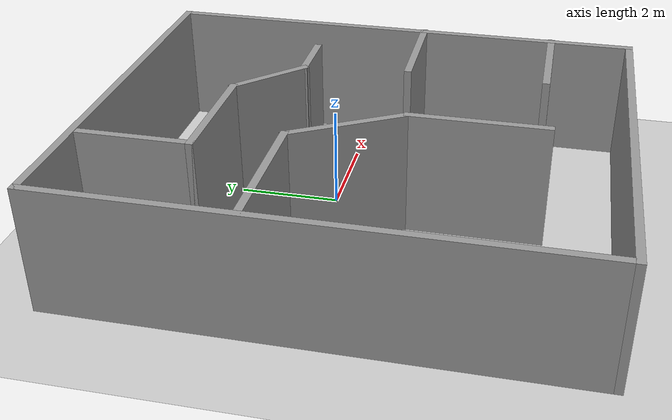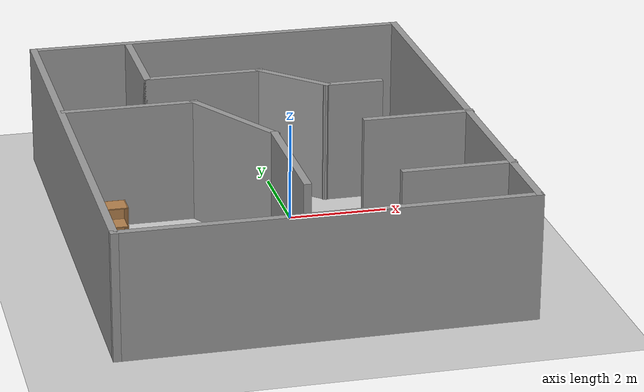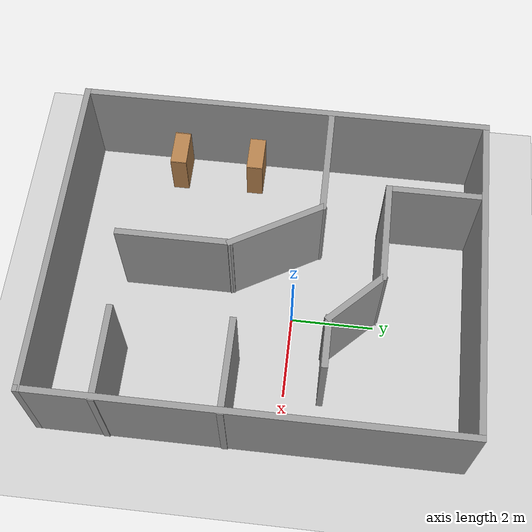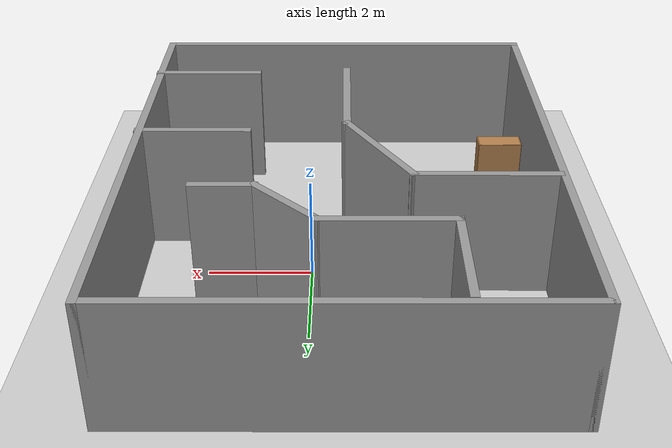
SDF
<sdf version="1.6">
 <world name="default">
  <plugin name="welcom" filename="libwelcome.so"/>
  <light name="sun" type="directional">
   <pose>0 0 10 0 -0 0</pose>
   <diffuse>0.8 0.8 0.8 1</diffuse>
   <specular>0.2 0.2 0.2 1</specular>
   <attenuation>
    <range>1000</range>
    <constant>0.9</constant>
    <linear>0.01</linear>
    <quadratic>0.001</quadratic>
   </attenuation>
   <direction>-0.5 0.1 -0.9</direction>
   <spot><inner_angle>0</inner_angle><outer_angle>0</outer_angle><falloff>0</falloff></spot>
  </light>
  <model name="ground_plane">
   <static>1</static>
   <link name="link">
    <collision name="collision">
     <geometry><plane><normal>0 0 1</normal><size>100 100</size></plane></geometry>
     <surface>
      <contact><collide_bitmask>65535</collide_bitmask></contact>
      <friction><ode><mu>100</mu><mu2>50</mu2></ode></friction>
     </surface>
    </collision>
    <visual name="visual">
     <cast_shadows>0</cast_shadows>
     <geometry><plane><normal>0 0 1</normal><size>100 100</size></plane></geometry>
     <material>
      <script><uri>file://media/materials/scripts/gazebo.material</uri><name>Gazebo/Grey</name></script>
     </material>
    </visual>
   </link>
  </model>
  <gravity>0 0 -9.8</gravity>
  <magnetic_field>6e-06 2.3e-05 -4.2e-05</magnetic_field>
  <atmosphere type="adiabatic"/>
  <physics name="default_physics" default="0" type="ode">
   <max_step_size>0.001</max_step_size>
   <real_time_factor>1</real_time_factor>
   <real_time_update_rate>1000</real_time_update_rate>
  </physics>
  <scene><ambient>0.4 0.4 0.4 1</ambient><background>0.7 0.7 0.7 1</background><shadows>1</shadows></scene>
  <spherical_coordinates>
   <surface_model>EARTH_WGS84</surface_model>
   <latitude_deg>0</latitude_deg>
   <longitude_deg>0</longitude_deg>
   <elevation>0</elevation>
   <heading_deg>0</heading_deg>
  </spherical_coordinates>
  <model name="Untitled_1">
   <pose>-0.589034 -0.67341 0 0 -0 0</pose>
   <link name="Wall_24">
    <collision name="Wall_24_Collision">
     <geometry><box><size>8 0.15 2.5</size></box></geometry>
     <pose>0 0 1.25 0 -0 0</pose>
    </collision>
    <visual name="Wall_24_Visual">
     <pose>0 0 1.25 0 -0 0</pose>
     <geometry><box><size>8 0.15 2.5</size></box></geometry>
     <material>
      <script><uri>file://media/materials/scripts/gazebo.material</uri><name>Gazebo/Grey</name></script>
      <ambient>1 1 1 1</ambient>
     </material>
     <meta><layer>0</layer></meta>
    </visual>
    <pose>-0.012259 4.925 0 0 -0 0</pose>
   </link>
   <link name="Wall_26">
    <collision name="Wall_26_Collision">
     <geometry><box><size>10 0.15 2.5</size></box></geometry>
     <pose>0 0 1.25 0 -0 0</pose>
    </collision>
    <visual name="Wall_26_Visual">
     <pose>0 0 1.25 0 -0 0</pose>
     <geometry><box><size>10 0.15 2.5</size></box></geometry>
     <material>
      <script><uri>file://media/materials/scripts/gazebo.material</uri><name>Gazebo/Grey</name></script>
      <ambient>1 1 1 1</ambient>
     </material>
     <meta><layer>0</layer></meta>
    </visual>
    <pose>3.91274 0 0 0 0 -1.5708</pose>
   </link>
   <link name="Wall_27">
    <collision name="Wall_27_Collision">
     <geometry><box><size>8 0.15 2.5</size></box></geometry>
     <pose>0 0 1.25 0 -0 0</pose>
    </collision>
    <visual name="Wall_27_Visual">
     <pose>0 0 1.25 0 -0 0</pose>
     <geometry><box><size>8 0.15 2.5</size></box></geometry>
     <material>
      <script><uri>file://media/materials/scripts/gazebo.material</uri><name>Gazebo/Grey</name></script>
      <ambient>1 1 1 1</ambient>
     </material>
     <meta><layer>0</layer></meta>
    </visual>
    <pose>-0.012259 -4.925 0 0 -0 3.14159</pose>
   </link>
   <link name="Wall_29">
    <collision name="Wall_29_Collision">
     <geometry><box><size>10 0.15 2.5</size></box></geometry>
     <pose>0 0 1.25 0 -0 0</pose>
    </collision>
    <visual name="Wall_29_Visual">
     <pose>0 0 1.25 0 -0 0</pose>
     <geometry><box><size>10 0.15 2.5</size></box></geometry>
     <material>
      <script><uri>file://media/materials/scripts/gazebo.material</uri><name>Gazebo/Grey</name></script>
      <ambient>1 1 1 1</ambient>
     </material>
     <meta><layer>0</layer></meta>
    </visual>
    <pose>-3.93726 0 0 0 -0 1.5708</pose>
   </link>
   <link name="Wall_31">
    <collision name="Wall_31_Collision">
     <geometry><box><size>2.75 0.15 2.5</size></box></geometry>
     <pose>0 0 1.25 0 -0 0</pose>
    </collision>
    <visual name="Wall_31_Visual">
     <pose>0 0 1.25 0 -0 0</pose>
     <geometry><box><size>2.75 0.15 2.5</size></box></geometry>
     <material>
      <script><uri>file://media/materials/scripts/gazebo.material</uri><name>Gazebo/Grey</name></script>
      <ambient>1 1 1 1</ambient>
     </material>
     <meta><layer>0</layer></meta>
    </visual>
    <pose>-2.56325 1.16431 0 0 -0 0</pose>
   </link>
   <link name="Wall_32">
    <collision name="Wall_32_Collision">
     <geometry><box><size>2.5 0.15 2.5</size></box></geometry>
     <pose>0 0 1.25 0 -0 0</pose>
    </collision>
    <visual name="Wall_32_Visual">
     <pose>0 0 1.25 0 -0 0</pose>
     <geometry><box><size>2.5 0.15 2.5</size></box></geometry>
     <material>
      <script><uri>file://media/materials/scripts/gazebo.material</uri><name>Gazebo/Grey</name></script>
      <ambient>1 1 1 1</ambient>
     </material>
     <meta><layer>0</layer></meta>
    </visual>
    <pose>-0.675749 0.146735 0 0 0 -1.0472</pose>
   </link>
   <link name="Wall_33">
    <collision name="Wall_33_Collision">
     <geometry><box><size>2.75 0.15 2.5</size></box></geometry>
     <pose>0 0 1.25 0 -0 0</pose>
    </collision>
    <visual name="Wall_33_Visual">
     <pose>0 0 1.25 0 -0 0</pose>
     <geometry><box><size>2.75 0.15 2.5</size></box></geometry>
     <material>
      <script><uri>file://media/materials/scripts/gazebo.material</uri><name>Gazebo/Grey</name></script>
      <ambient>1 1 1 1</ambient>
     </material>
     <meta><layer>0</layer></meta>
    </visual>
    <pose>-0.088249 -2.17084 0 0 0 -1.5708</pose>
   </link>
   <link name="Wall_35">
    <collision name="Wall_35_Collision">
     <geometry><box><size>2.25 0.15 2.5</size></box></geometry>
     <pose>0 0 1.25 0 -0 0</pose>
    </collision>
    <visual name="Wall_35_Visual">
     <pose>0 0 1.25 0 -0 0</pose>
     <geometry><box><size>2.25 0.15 2.5</size></box></geometry>
     <material>
      <script><uri>file://media/materials/scripts/gazebo.material</uri><name>Gazebo/Grey</name></script>
      <ambient>1 1 1 1</ambient>
     </material>
     <meta><layer>0</layer></meta>
    </visual>
    <pose>-1.93606 3.72396 0 0 0 -1.5708</pose>
   </link>
   <link name="Wall_36">
    <collision name="Wall_36_Collision">
     <geometry><box><size>2.5 0.15 2.5</size></box></geometry>
     <pose>0 0 1.25 0 -0 0</pose>
    </collision>
    <visual name="Wall_36_Visual">
     <pose>0 0 1.25 0 -0 0</pose>
     <geometry><box><size>2.5 0.15 2.5</size></box></geometry>
     <material>
      <script><uri>file://media/materials/scripts/gazebo.material</uri><name>Gazebo/Grey</name></script>
      <ambient>1 1 1 1</ambient>
     </material>
     <meta><layer>0</layer></meta>
    </visual>
    <pose>-0.761064 2.67396 0 0 -0 0</pose>
   </link>
   <link name="Wall_37">
    <collision name="Wall_37_Collision">
     <geometry><box><size>1.75 0.15 2.5</size></box></geometry>
     <pose>0 0 1.25 0 -0 0</pose>
    </collision>
    <visual name="Wall_37_Visual">
     <pose>0 0 1.25 0 -0 0</pose>
     <geometry><box><size>1.75 0.15 2.5</size></box></geometry>
     <material>
      <script><uri>file://media/materials/scripts/gazebo.material</uri><name>Gazebo/Grey</name></script>
      <ambient>1 1 1 1</ambient>
     </material>
     <meta><layer>0</layer></meta>
    </visual>
    <pose>0.979621 2.10828 0 0 0 -0.785398</pose>
   </link>
   <link name="Wall_38">
    <collision name="Wall_38_Collision">
     <geometry><box><size>1.25 0.15 2.5</size></box></geometry>
     <pose>0 0 1.25 0 -0 0</pose>
    </collision>
    <visual name="Wall_38_Visual">
     <pose>0 0 1.25 0 -0 0</pose>
     <geometry><box><size>1.25 0.15 2.5</size></box></geometry>
     <material>
      <script><uri>file://media/materials/scripts/gazebo.material</uri><name>Gazebo/Grey</name></script>
      <ambient>1 1 1 1</ambient>
     </material>
     <meta><layer>0</layer></meta>
    </visual>
    <pose>2.09531 1.54259 0 0 -0 0</pose>
   </link>
   <link name="Wall_40">
    <collision name="Wall_40_Collision">
     <geometry><box><size>2.25 0.15 2.5</size></box></geometry>
     <pose>0 0 1.25 0 -0 0</pose>
    </collision>
    <visual name="Wall_40_Visual">
     <pose>0 0 1.25 0 -0 0</pose>
     <geometry><box><size>2.25 0.15 2.5</size></box></geometry>
     <material>
      <script><uri>file://media/materials/scripts/gazebo.material</uri><name>Gazebo/Grey</name></script>
      <ambient>1 1 1 1</ambient>
     </material>
     <meta><layer>0</layer></meta>
    </visual>
    <pose>2.88726 -0.548738 0 0 -0 3.14159</pose>
   </link>
   <link name="Wall_42">
    <collision name="Wall_42_Collision">
     <geometry><box><size>2.25 0.15 2.5</size></box></geometry>
     <pose>0 0 1.25 0 -0 0</pose>
    </collision>
    <visual name="Wall_42_Visual">
     <pose>0 0 1.25 0 -0 0</pose>
     <geometry><box><size>2.25 0.15 2.5</size></box></geometry>
     <material>
      <script><uri>file://media/materials/scripts/gazebo.material</uri><name>Gazebo/Grey</name></script>
      <ambient>1 1 1 1</ambient>
     </material>
     <meta><layer>0</layer></meta>
    </visual>
    <pose>2.88726 -3.30186 0 0 -0 3.14159</pose>
   </link>
   <static>1</static>
  </model>
  <model name="bookshelf">
   <static>1</static>
   <link name="link">
    <inertial><mass>1</mass></inertial>
    <collision name="back">
     <pose>0 0.005 0.6 0 -0 0</pose>
     <geometry><box><size>0.9 0.01 1.2</size></box></geometry>
    </collision>
    <visual name="visual1">
     <pose>0 0.005 0.6 0 -0 0</pose>
     <geometry><box><size>0.9 0.01 1.2</size></box></geometry>
     <material>
      <script><uri>file://media/materials/scripts/gazebo.material</uri><name>Gazebo/Wood</name></script>
     </material>
    </visual>
    <collision name="left_side">
     <pose>0.45 -0.195 0.6 0 -0 0</pose>
     <geometry><box><size>0.02 0.4 1.2</size></box></geometry>
    </collision>
    <visual name="visual2">
     <pose>0.45 -0.195 0.6 0 -0 0</pose>
     <geometry><box><size>0.02 0.4 1.2</size></box></geometry>
     <material>
      <script><uri>file://media/materials/scripts/gazebo.material</uri><name>Gazebo/Wood</name></script>
     </material>
    </visual>
    <collision name="right_side">
     <pose>-0.45 -0.195 0.6 0 -0 0</pose>
     <geometry><box><size>0.02 0.4 1.2</size></box></geometry>
    </collision>
    <visual name="visual3">
     <pose>-0.45 -0.195 0.6 0 -0 0</pose>
     <geometry><box><size>0.02 0.4 1.2</size></box></geometry>
     <material>
      <script><uri>file://media/materials/scripts/gazebo.material</uri><name>Gazebo/Wood</name></script>
     </material>
    </visual>
    <collision name="bottom">
     <pose>0 -0.195 0.03 0 -0 0</pose>
     <geometry><box><size>0.88 0.4 0.06</size></box></geometry>
    </collision>
    <visual name="visual4">
     <pose>0 -0.195 0.03 0 -0 0</pose>
     <geometry><box><size>0.88 0.4 0.06</size></box></geometry>
     <material>
      <script><uri>file://media/materials/scripts/gazebo.material</uri><name>Gazebo/Wood</name></script>
     </material>
    </visual>
    <collision name="top">
     <pose>0 -0.195 1.19 0 -0 0</pose>
     <geometry><box><size>0.88 0.4 0.02</size></box></geometry>
    </collision>
    <visual name="visual5">
     <pose>0 -0.195 1.19 0 -0 0</pose>
     <geometry><box><size>0.88 0.4 0.02</size></box></geometry>
     <material>
      <script><uri>file://media/materials/scripts/gazebo.material</uri><name>Gazebo/Wood</name></script>
     </material>
    </visual>
    <collision name="low_shelf">
     <pose>0 -0.195 0.43 0 -0 0</pose>
     <geometry><box><size>0.88 0.4 0.02</size></box></geometry>
    </collision>
    <visual name="visual6">
     <pose>0 -0.195 0.43 0 -0 0</pose>
     <geometry><box><size>0.88 0.4 0.02</size></box></geometry>
     <material>
      <script><uri>file://media/materials/scripts/gazebo.material</uri><name>Gazebo/Wood</name></script>
     </material>
    </visual>
    <collision name="high_shelf">
     <pose>0 -0.195 0.8 0 -0 0</pose>
     <geometry><box><size>0.88 0.4 0.02</size></box></geometry>
    </collision>
    <visual name="visual7">
     <pose>0 -0.195 0.8 0 -0 0</pose>
     <geometry><box><size>0.88 0.4 0.02</size></box></geometry>
     <material>
      <script><uri>file://media/materials/scripts/gazebo.material</uri><name>Gazebo/Wood</name></script>
     </material>
    </visual>
   </link>
   <pose>-3.97847 -3.08648 0 0 -0 0</pose>
  </model>
  <model name="bookshelf_0">
   <static>1</static>
   <link name="link">
    <inertial><mass>1</mass></inertial>
    <collision name="back">
     <pose>0 0.005 0.6 0 -0 0</pose>
     <geometry><box><size>0.9 0.01 1.2</size></box></geometry>
    </collision>
    <visual name="visual1">
     <pose>0 0.005 0.6 0 -0 0</pose>
     <geometry><box><size>0.9 0.01 1.2</size></box></geometry>
     <material>
      <script><uri>file://media/materials/scripts/gazebo.material</uri><name>Gazebo/Wood</name></script>
     </material>
    </visual>
    <collision name="left_side">
     <pose>0.45 -0.195 0.6 0 -0 0</pose>
     <geometry><box><size>0.02 0.4 1.2</size></box></geometry>
    </collision>
    <visual name="visual2">
     <pose>0.45 -0.195 0.6 0 -0 0</pose>
     <geometry><box><size>0.02 0.4 1.2</size></box></geometry>
     <material>
      <script><uri>file://media/materials/scripts/gazebo.material</uri><name>Gazebo/Wood</name></script>
     </material>
    </visual>
    <collision name="right_side">
     <pose>-0.45 -0.195 0.6 0 -0 0</pose>
     <geometry><box><size>0.02 0.4 1.2</size></box></geometry>
    </collision>
    <visual name="visual3">
     <pose>-0.45 -0.195 0.6 0 -0 0</pose>
     <geometry><box><size>0.02 0.4 1.2</size></box></geometry>
     <material>
      <script><uri>file://media/materials/scripts/gazebo.material</uri><name>Gazebo/Wood</name></script>
     </material>
    </visual>
    <collision name="bottom">
     <pose>0 -0.195 0.03 0 -0 0</pose>
     <geometry><box><size>0.88 0.4 0.06</size></box></geometry>
    </collision>
    <visual name="visual4">
     <pose>0 -0.195 0.03 0 -0 0</pose>
     <geometry><box><size>0.88 0.4 0.06</size></box></geometry>
     <material>
      <script><uri>file://media/materials/scripts/gazebo.material</uri><name>Gazebo/Wood</name></script>
     </material>
    </visual>
    <collision name="top">
     <pose>0 -0.195 1.19 0 -0 0</pose>
     <geometry><box><size>0.88 0.4 0.02</size></box></geometry>
    </collision>
    <visual name="visual5">
     <pose>0 -0.195 1.19 0 -0 0</pose>
     <geometry><box><size>0.88 0.4 0.02</size></box></geometry>
     <material>
      <script><uri>file://media/materials/scripts/gazebo.material</uri><name>Gazebo/Wood</name></script>
     </material>
    </visual>
    <collision name="low_shelf">
     <pose>0 -0.195 0.43 0 -0 0</pose>
     <geometry><box><size>0.88 0.4 0.02</size></box></geometry>
    </collision>
    <visual name="visual6">
     <pose>0 -0.195 0.43 0 -0 0</pose>
     <geometry><box><size>0.88 0.4 0.02</size></box></geometry>
     <material>
      <script><uri>file://media/materials/scripts/gazebo.material</uri><name>Gazebo/Wood</name></script>
     </material>
    </visual>
    <collision name="high_shelf">
     <pose>0 -0.195 0.8 0 -0 0</pose>
     <geometry><box><size>0.88 0.4 0.02</size></box></geometry>
    </collision>
    <visual name="visual7">
     <pose>0 -0.195 0.8 0 -0 0</pose>
     <geometry><box><size>0.88 0.4 0.02</size></box></geometry>
     <material>
      <script><uri>file://media/materials/scripts/gazebo.material</uri><name>Gazebo/Wood</name></script>
     </material>
    </visual>
   </link>
   <pose>-4.0242 -1.14042 0 0 -0 0</pose>
  </model>
 </world>
</sdf>
